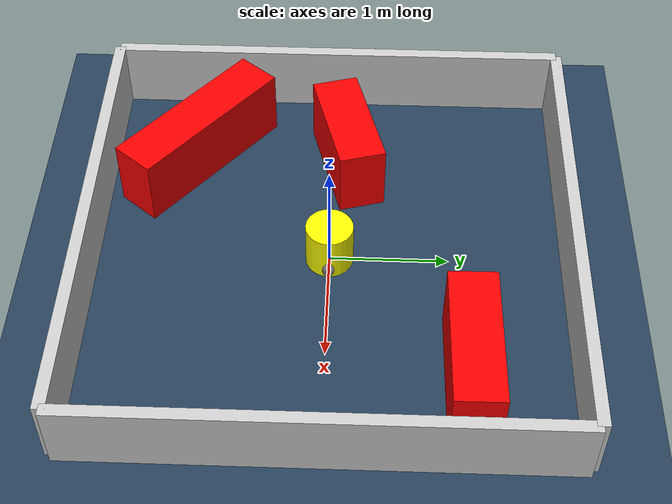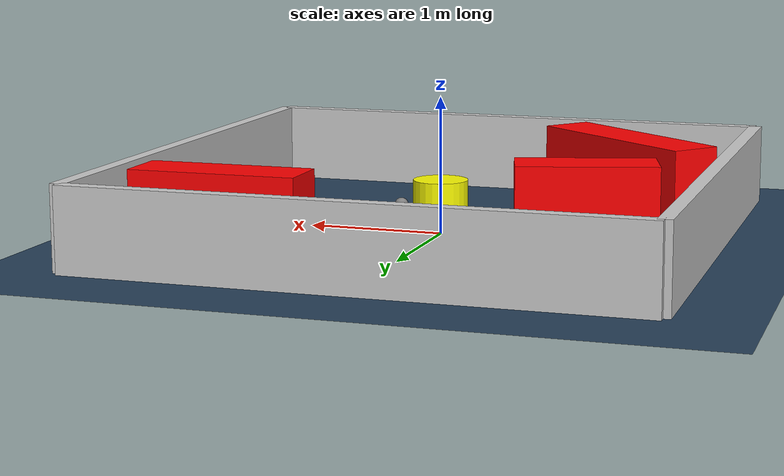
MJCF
<?xml version="1.0" ?>
<mujoco model="generated_environment">
  <option timestep="0.01" integrator="RK4" cone="elliptic"/>
  <default>
    <geom density="1"/>
  </default>
  <asset>
    <texture builtin="gradient" height="3072" rgb1="0.3 0.5 0.7" rgb2="0 0 0" type="skybox" width="512"/>
    <texture builtin="checker" height="300" mark="edge" markrgb="0.8 0.8 0.8" name="groundplane" rgb1="0.2 0.3 0.4" rgb2="0.1 0.2 0.3" type="2d" width="300"/>
    <material name="groundplane" reflectance="0.2" texrepeat="5 5" texture="groundplane" texuniform="true"/>
    <material name="robot" rgba="0.0 1.0 0.0 1"/>
  </asset>
  <worldbody>
    <light dir="0 0 -1" directional="true" pos="0 0 1.5"/>
    <geom condim="4" friction="1.0 0.005 0.001" material="groundplane" name="floor" size="0 0 0.05" type="plane"/>
    <body name="walls">
      <geom name="wall_1" condim="4" pos="-2.0 0.0 0.3" rgba="0.800000011920929 0.800000011920929 0.800000011920929 1.0" size="0.05 2.0 0.3" type="box"/>
      <geom name="wall_2" condim="4" pos="2.0 0.0 0.3" rgba="0.800000011920929 0.800000011920929 0.800000011920929 1.0" size="0.05 2.0 0.3" type="box"/>
      <geom name="wall_3" condim="4" pos="0.0 -2.0 0.3" rgba="0.800000011920929 0.800000011920929 0.800000011920929 1.0" size="2.0 0.05 0.3" type="box"/>
      <geom name="wall_4" condim="4" pos="0.0 2.0 0.3" rgba="0.800000011920929 0.800000011920929 0.800000011920929 1.0" size="2.0 0.05 0.3" type="box"/>
    </body>
    <body name="robot">
      <joint name="joint_x" type="slide" pos="0 0 0" axis="1 0 0"/>
      <joint name="joint_y" type="slide" pos="0 0 0" axis="0 1 0"/>
      <geom name="robot" type="sphere" pos="0.3 0.0 0.2" size="0.05" mass="5." friction="1.0 0.005 0.0001" condim="4" rgba="0.5 0.5 0.5 1.0"/>
      <site name="sensor_ball"/>
    </body>
    <body name="obstacle_movable_1">
      <geom name="obstacle_movable_1" condim="4" pos="0.0 0.0 0.2" euler="0 0 0.0" friction="1.0 0.005 0.001" rgba="1.0 1.0 0.0 1.0" size="0.2 0.2 0.0" type="cylinder" mass="0.1"/>
      <joint type="free"/>
    </body>
    <body name="obstacle_2_static">
      <geom name="obstacle_2_static" condim="4" pos="-1.138078327505369 -1.1989898503863392 0.3" euler="0 0 140.67727726279426" friction="1.0 0.005 0.001" rgba="1 0 0 1" size="0.7809840842852829 0.2 0.3" type="box"/>
    </body>
    <body name="obstacle_3_static">
      <geom name="obstacle_3_static" condim="4" pos="-1.1064029582048693 0.1273643079360227 0.3" euler="0 0 195.65399427802802" friction="1.0 0.005 0.001" rgba="1 0 0 1" size="0.5027591906113696 0.2 0.3" type="box"/>
    </body>
    <body name="obstacle_4_static">
      <geom name="obstacle_4_static" condim="4" pos="1.216638939641801 1.1443982099991301 0.3" euler="0 0 180.41720817225536" friction="1.0 0.005 0.001" rgba="1 0 0 1" size="0.606914491314531 0.2 0.3" type="box"/>
    </body>
  </worldbody>
  <actuator>
    <motor name="actuator_x" joint="joint_x" gear="1" ctrlrange="-1 1"/>
    <motor name="actuator_y" joint="joint_y" gear="1" ctrlrange="-1 1"/>
  </actuator>
</mujoco>
